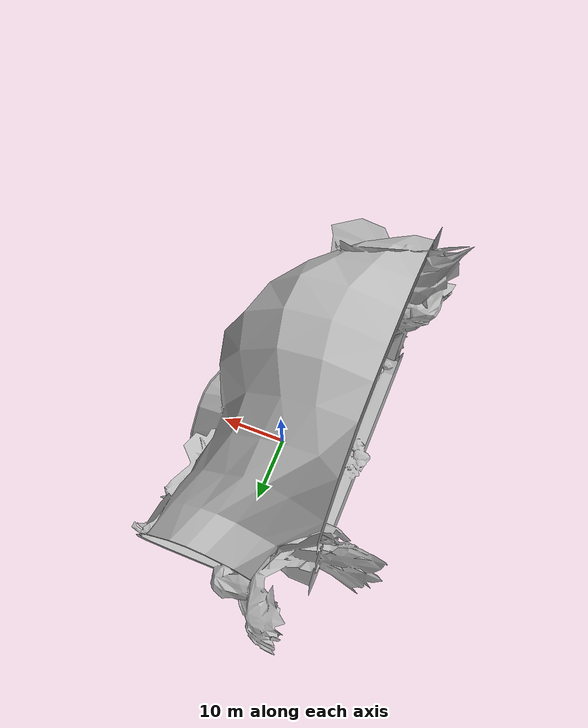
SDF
<?xml version="1.0"?>
<sdf version="1.6">
  <model name="Cave Cavern Split 01">
    <pose>0 0 0 0 0 0</pose>
    <static>true</static>
    <link name="link">
      <collision name="collision">
        <geometry>
          <mesh>
            <uri>model://Cave Cavern Split 01/meshes/cavernsplit01.dae</uri>
         </mesh>
        </geometry>
      </collision>
      <visual name="visual">
        <geometry>
          <mesh>
            <uri>model://Cave Cavern Split 01/meshes/cavernsplit01.dae</uri>
         </mesh>
        </geometry>
      </visual>
    </link>
  </model>
 </sdf>
